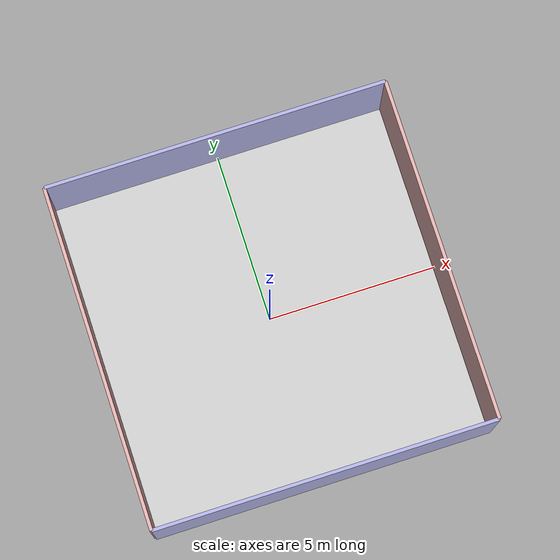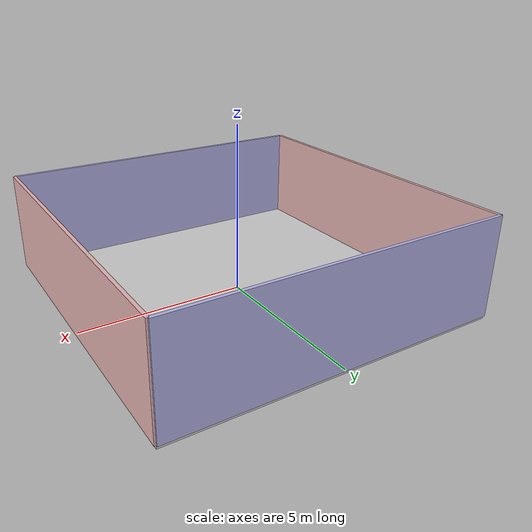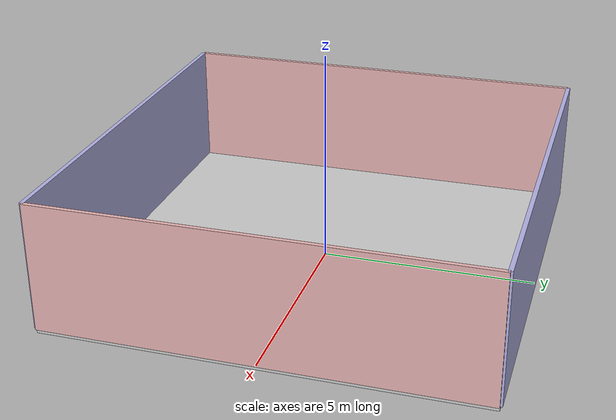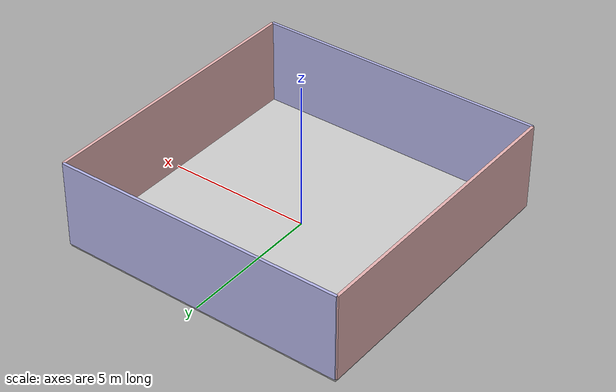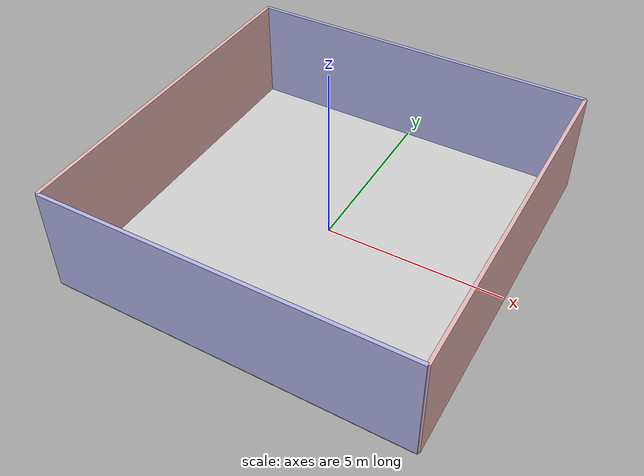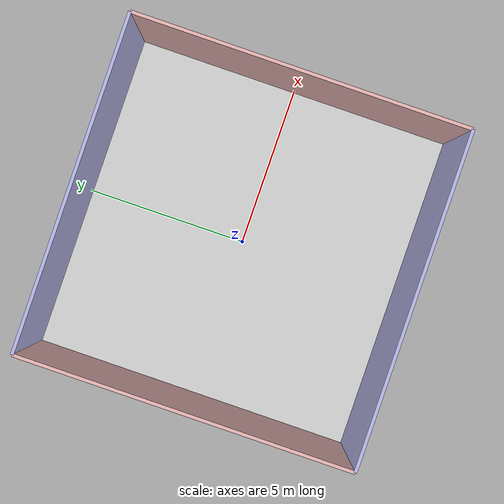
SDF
<?xml version="1.0" ?>
<sdf version="1.6">
  <world name="simple_room">

    <!-- 光照 -->
    <include>
      <uri>model://sun</uri>
    </include>

    <!-- 地面 -->
    <model name="floor">
      <static>true</static>
      <pose>0 0 -0.05 0 0 0</pose>
      <link name="link">
        <collision name="collision">
          <geometry>
            <box>
              <size>10 10 0.1</size>
            </box>
          </geometry>
        </collision>
        <visual name="visual">
          <geometry>
            <box>
              <size>10 10 0.1</size>
            </box>
          </geometry>
          <material>
            <ambient>0.8 0.8 0.8 1</ambient>
            <diffuse>0.8 0.8 0.8 1</diffuse>
          </material>
        </visual>
      </link>
    </model>

    <!-- 天花板 -->

    <!-- 前墙 -->
    <model name="wall_front">
      <static>true</static>
      <pose>0 5 1.5 0 0 0</pose>
      <link name="link">
        <collision name="collision">
          <geometry>
            <box>
              <size>10 0.1 3</size>
            </box>
          </geometry>
        </collision>
        <visual name="visual">
          <geometry>
            <box>
              <size>10 0.1 3</size>
            </box>
          </geometry>
          <material>
            <ambient>0.7 0.7 0.9 1</ambient>
            <diffuse>0.7 0.7 0.9 1</diffuse>
          </material>
        </visual>
      </link>
    </model>

    <!-- 后墙 -->
    <model name="wall_back">
      <static>true</static>
      <pose>0 -5 1.5 0 0 0</pose>
      <link name="link">
        <collision name="collision">
          <geometry>
            <box>
              <size>10 0.1 3</size>
            </box>
          </geometry>
        </collision>
        <visual name="visual">
          <geometry>
            <box>
              <size>10 0.1 3</size>
            </box>
          </geometry>
          <material>
            <ambient>0.7 0.7 0.9 1</ambient>
            <diffuse>0.7 0.7 0.9 1</diffuse>
          </material>
        </visual>
      </link>
    </model>

    <!-- 左墙 -->
    <model name="wall_left">
      <static>true</static>
      <pose>-5 0 1.5 0 0 0</pose>
      <link name="link">
        <collision name="collision">
          <geometry>
            <box>
              <size>0.1 10 3</size>
            </box>
          </geometry>
        </collision>
        <visual name="visual">
          <geometry>
            <box>
              <size>0.1 10 3</size>
            </box>
          </geometry>
          <material>
            <ambient>0.9 0.7 0.7 1</ambient>
            <diffuse>0.9 0.7 0.7 1</diffuse>
          </material>
        </visual>
      </link>
    </model>

    <!-- 右墙 -->
    <model name="wall_right">
      <static>true</static>
      <pose>5 0 1.5 0 0 0</pose>
      <link name="link">
        <collision name="collision">
          <geometry>
            <box>
              <size>0.1 10 3</size>
            </box>
          </geometry>
        </collision>
        <visual name="visual">
          <geometry>
            <box>
              <size>0.1 10 3</size>
            </box>
          </geometry>
          <material>
            <ambient>0.9 0.7 0.7 1</ambient>
            <diffuse>0.9 0.7 0.7 1</diffuse>
          </material>
        </visual>
      </link>
    </model>

    <physics type="ode">
      <max_step_size>0.001</max_step_size>
      <real_time_update_rate>1000</real_time_update_rate>
      <gravity>0 0 -9.8</gravity>
    </physics>

  </world>
</sdf>
